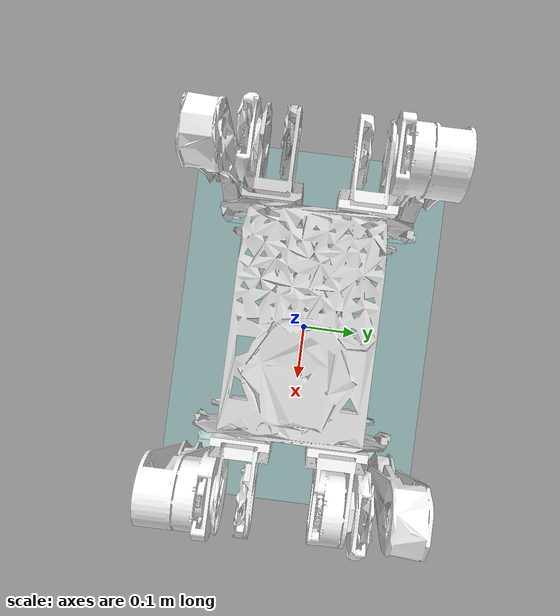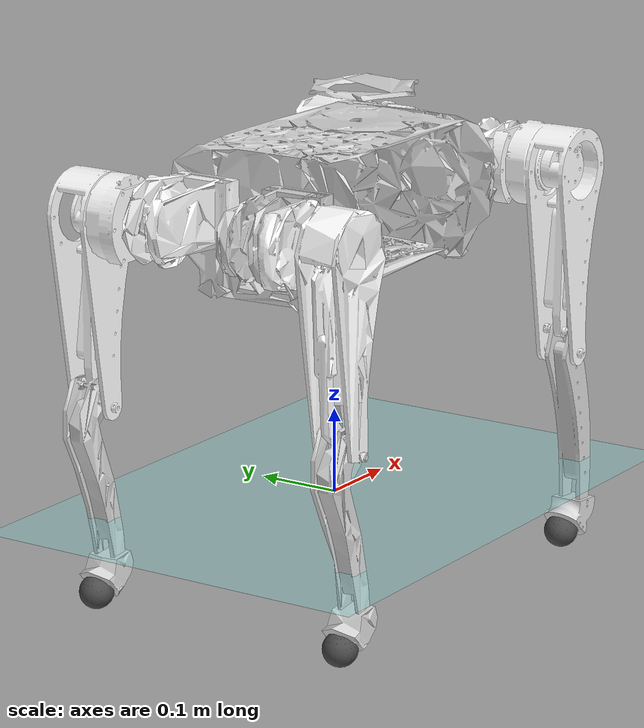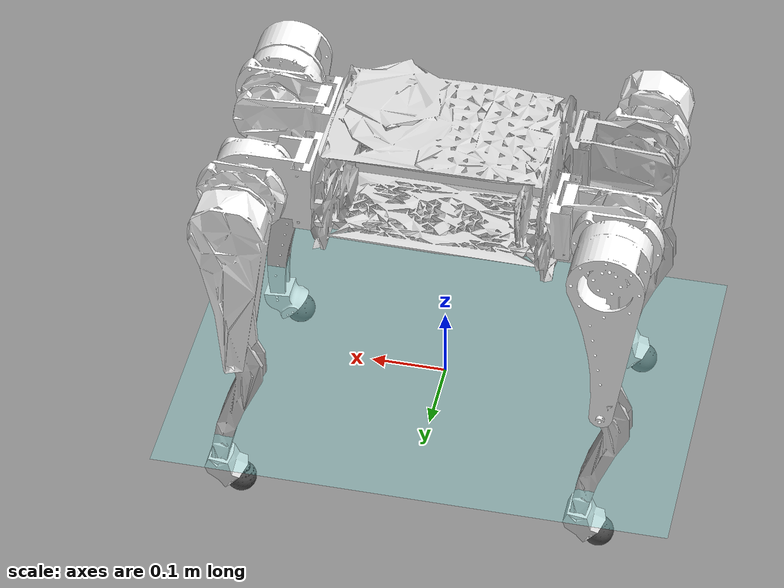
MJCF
<mujoco model="mybot_v2_1">
    <compiler angle="radian" meshdir="../meshes/" autolimits="true"/>
    <size njmax="500" nconmax="100" />
    <option gravity='0 0 -9.806' iterations='50' solver='Newton' timestep='0.005'/>

    <default>
        <default class="dog_v2">
            <geom contype="1" conaffinity="1" friction="0.6 0.3 0.3" rgba="0.5 0.6 0.7 1" margin="0.001" group="0"/>
            <joint armature="0.01" damping="2" frictionloss="0.2"/>
            <motor ctrlrange="-33.5 33.5" ctrllimited="true"/>

            <default class="abduction">
                <joint damping="1"/>
            </default>
            <default class="thigh">
                <joint damping="2"/>
            </default>
            <default class="calf">
                <joint damping="2" armature="0.0544"/>
                <motor gear="2.3333"/>
            </default>
        </default>

        <light castshadow="false" diffuse="1 1 1"/>
        <camera fovy="60"/>
    </default>

    <asset>
        <mesh name="body" file="body.STL" />
        <mesh name="FL_hip" file="FL_hip.STL" />
        <mesh name="FL_thigh" file="FL_thigh.STL" />
        <mesh name="FL_calf" file="FL_calf.STL" />
        <mesh name="FL_foot" file="FL_foot.STL" />
        <mesh name="FR_hip" file="FR_hip.STL" />
        <mesh name="FR_thigh" file="FR_thigh.STL" />
        <mesh name="FR_calf" file="FR_calf.STL" />
        <mesh name="FR_foot" file="FR_foot.STL" />
        <mesh name="RL_hip" file="RL_hip.STL" />
        <mesh name="RL_thigh" file="RL_thigh.STL" />
        <mesh name="RL_calf" file="RL_calf.STL" />
        <mesh name="RL_foot" file="RL_foot.STL" />
        <mesh name="RR_hip" file="RR_hip.STL" />
        <mesh name="RR_thigh" file="RR_thigh.STL" />
        <mesh name="RR_calf" file="RR_calf.STL" />
        <mesh name="RR_foot" file="RR_foot.STL" />

        <texture type="skybox" builtin="gradient" rgb1="1.0 1.0 1.0" rgb2="1.0 1.0 1.0" width="512" height="512"/>
        <texture name="plane" type="2d" builtin="flat" rgb1="1 1 1" rgb2="1 1 1" width="512" height="512" mark="cross" markrgb="0 0 0"/>
        <material name="plane" reflectance="0.0" texture="plane" texrepeat="3 3" texuniform="true"/>
    </asset>

    <visual>
        <rgba com="0.502 1.0 0 0.5" contactforce="0.98 0.4 0.4 0.7" contactpoint="1.0 1.0 0.6 0.4"/>
        <scale com="0.2" forcewidth="0.035" contactwidth="0.10" contactheight="0.04"/>
    </visual>

    <worldbody>
        <light directional="true" diffuse=".8 .8 .8" pos="0 0 10" dir="0 0 -10"/>
        <camera name="track" mode="trackcom" pos="0 -1.3 1.6" xyaxes="1 0 0 0 0.707 0.707"/>
        <geom name='floor' type='plane' conaffinity='1' condim='3' contype='1' rgba="0.5 0.9 0.9 0.1" material='plane' pos='0 0 0' size='0 0 1'/>

        <body name="body" pos="0 0 0.35" childclass="dog_v2">
            <inertial pos="0 0 0" mass="3.70357154" fullinertia="0.02485973 0.06519119 0.07602832 7E-08 2.029E-05 1.2E-06" />
            <joint type="free" />
            <geom type="mesh" contype="0" conaffinity="0" group="1" rgba="0.847 0.847 0.847 1" mesh="body" />
            <geom size="0.15 0.1 0.08" pos="-0.0 0 -0.0" type="box" rgba="0.913 0.913 0.847 0" />
            <site name="imu" pos="0 0 0"/>

            <body name="FL_hip" pos="0.15106 0.062037 0.0087919">
                <inertial pos="0.06912954 0.00308032 -0.00003864" mass="0.88715151" fullinertia="0.00069961 0.00185100 0.00156540 -0.00005524 0.00000161 -0.00000029" />
                <joint class="abduction" name="FL_hip_joint" pos="0 0 0" axis="1 0 0" range="-0.8 0.8" />
                <geom type="mesh" contype="0" conaffinity="0" group="1" rgba="1 1 1 1" mesh="FL_hip" />
                <geom size="0.04 0.03" euler="1.5707963 0 0" type="cylinder" rgba="0.913 0.913 0.847 0" />

                <body name="FL_thigh" pos="0.089 0.02895 0">
                    <inertial pos="-0.00176951 0.05306396 -0.03995815" mass="1.58133941" fullinertia="0.00867755 0.00831722 0.00215563 0.00006478 -0.00018618 0.00140967" />
                    <joint class="thigh" name="FL_thigh_joint" pos="0 0 0" axis="0 1 0" range="-1.04 4.18" />
                    <geom type="mesh" contype="0" conaffinity="0" group="1" rgba="1 1 1 1" mesh="FL_thigh" />
                    <geom size="0.02 0.02 0.1" pos="0 0.08 -0.1" type="box" rgba="0.913 0.913 0.847 0" />

                    <body name="FL_calf" pos="0 0.0753 -0.22">
                        <inertial pos="0.0023755 -0.000029153 -0.085563" mass="0.34494" fullinertia="0.00211121 0.00219234 0.00015881 0.0000003 0.00039966 -0.00000192" />
                        <joint class="calf" name="FL_calf_joint" pos="0 0 0" axis="0 1 0" range="-2.69 -0.91" />
                        <geom type="mesh" contype="0" conaffinity="0" group="1" rgba="0.847 0.847 0.847 1" mesh="FL_calf" />
                        <geom size="0.01 0.01 0.1" pos="0 0 -0.1" type="box" rgba="0 0 0 0" />

                        <body name="FL_foot" pos="0 -0.00025 -0.22336">
                            <inertial pos="0 0 0" mass="0.03351" fullinertia="0.0000053617 0.0000053617 0.0000053617 0 0 0" />
                            <geom type="mesh" contype="0" conaffinity="0" group="1" rgba="0.298 0.298 0.298 1" mesh="FL_foot" />
                            <geom size="0.02" type="sphere" rgba="0 0 0 1" />
                        </body>
                    </body>
                </body>
            </body>

            <body name="FR_hip" pos="0.15106 -0.061963 0.0087919">
                <inertial pos="0.06924677 -0.00308032 -0.00003847" mass="0.88715151" fullinertia="0.00069961 0.00185513 0.00156952 0.00005408 -0.00000026 0.00000029" />
                <joint class="abduction" name="FR_hip_joint" pos="0 0 0" axis="1 0 0" range="-0.8 0.8" />
                <geom type="mesh" contype="0" conaffinity="0" group="1" rgba="1 1 1 1" mesh="FR_hip" />
                <geom size="0.04 0.03" euler="1.5707963 0 0" type="cylinder" rgba="0.913 0.913 0.847 0" />

                <body name="FR_thigh" pos="0.089 -0.02895 0">
                    <inertial pos="-0.00184722 -0.05308638 -0.03995616" mass="1.5813" fullinertia="0.00867822 0.00831708 0.00215611 -0.00006202 -0.00018385 -0.00140961" />
                    <joint class="thigh" name="FR_thigh_joint" pos="0 0 0" axis="0 1 0" range="-1.04 4.18" />
                    <geom type="mesh" contype="0" conaffinity="0" group="1" rgba="1 1 1 1" mesh="FR_thigh" />
                    <geom size="0.02 0.02 0.1" pos="0 -0.08 -0.1" type="box" rgba="0.913 0.913 0.847 0" />

                    <body name="FR_calf" pos="0 -0.0753 -0.22">
                        <inertial pos="0.0023755 0.000026551 -0.085563" mass="0.34494" fullinertia="0.00211121 0.00219234 0.00015881 -0.00000028 0.00039966 0.00000182" />
                        <joint class="calf" name="FR_calf_joint" pos="0 0 0" axis="0 1 0" range="-2.69 -0.91" />
                        <geom type="mesh" contype="0" conaffinity="0" group="1" rgba="0.847 0.847 0.847 1" mesh="FR_calf" />
                        <geom size="0.01 0.01 0.1" pos="0 0 -0.1" type="box" rgba="0 0 0 0" />

                        <body name="FR_foot" pos="0 0.00025 -0.22336">
                            <inertial pos="0 0 0" mass="0.03351" fullinertia="0.0000053617 0.0000053617 0.0000053617 0 0 0" />
                            <geom type="mesh" contype="0" conaffinity="0" group="1" rgba="0.298 0.298 0.298 1" mesh="FR_foot" />
                            <geom size="0.02" type="sphere" rgba="0 0 0 1" />
                        </body>
                    </body>
                </body>
            </body>

            <body name="RL_hip" pos="-0.15014 0.062037 0.0087919">
                <inertial pos="-0.06912960 0.00308032 0.00003847" mass="0.88715151" fullinertia="0.00069961 0.00185101 0.00156541 0.00005524 0.00000161 0.00000029" />
                <joint class="abduction" name="RL_hip_joint" pos="0 0 0" axis="1 0 0" range="-0.8 0.8" />
                <geom type="mesh" contype="0" conaffinity="0" group="1" rgba="1 1 1 1" mesh="RL_hip" />
                <geom size="0.04 0.03" euler="1.5707963 0 0" type="cylinder" rgba="0.913 0.913 0.847 0" />

                <body name="RL_thigh" pos="-0.089 0.02895 0">
                    <inertial pos="-0.00271376 0.05342776 -0.03973152" mass="1.593154" fullinertia="0.00874288 0.00841103 0.00223462 0.00009667 -0.00020428 0.00139054" />
                    <joint class="thigh" name="RL_thigh_joint" pos="0 0 0" axis="0 1 0" range="-1.04 4.18" />
                    <geom type="mesh" contype="0" conaffinity="0" group="1" rgba="1 1 1 1" mesh="RL_thigh" />
                    <geom size="0.02 0.02 0.1" pos="0 0.08 -0.1" type="box" rgba="0.913 0.913 0.847 0" />

                    <body name="RL_calf" pos="0 0.0753 -0.22">
                        <inertial pos="0.0023755 -0.000047806 -0.085563" mass="0.34494" fullinertia="0.00211121 0.00219234 0.00015881 0.00000022 0.00039966 -0.00000123" />
                        <joint class="calf" name="RL_calf_joint" pos="0 0 0" axis="0 1 0" range="-2.69 -0.91" />
                        <geom type="mesh" contype="0" conaffinity="0" group="1" rgba="0.847 0.847 0.847 1" mesh="RL_calf" />
                        <geom size="0.01 0.01 0.1" pos="0 0 -0.1" type="box" rgba="0 0 0 0" />

                        <body name="RL_foot" pos="0 -0.00025 -0.22336">
                            <inertial pos="0 0 0" mass="0.03351" fullinertia="0.0000053617 0.0000053617 0.0000053617 0 0 0" />
                            <geom type="mesh" contype="0" conaffinity="0" group="1" rgba="0.298 0.298 0.298 1" mesh="RL_foot" />
                            <geom size="0.02" type="sphere" rgba="0 0 0 1" />
                        </body>
                    </body>
                </body>
            </body>

            <body name="RR_hip" pos="-0.15013508 -0.0619632146458127 0.00879191128020729">
                <inertial pos="-0.06924676 -0.00308032 0.00003847" mass="0.88715151" fullinertia="0.00069961 0.00185513 0.00156952 -0.00005408 -0.00000026 -0.00000029" />
                <joint class="abduction" name="RR_hip_joint" pos="0 0 0" axis="1 0 0" range="-0.8 0.8" />
                <geom type="mesh" contype="0" conaffinity="0" group="1" rgba="0.847 0.847 0.847 1" mesh="RR_hip" />
                <geom size="0.04 0.03" euler="1.5707963 0 0" type="cylinder" rgba="0.913 0.913 0.847 0" />

                <body name="RR_thigh" pos="-0.088999695625364 -0.0289499999999917 0">
                    <inertial pos="-0.00297935 -0.05327553 -0.03814011" mass="1.58306405" fullinertia="0.00816821 0.00785378 0.00221841 -0.00010062 -0.00025438 -0.00133132" />
                    <joint class="thigh" name="RR_thigh_joint" pos="0 0 0" axis="0 1 0" range="-1.04 4.18" />
                    <geom type="mesh" contype="0" conaffinity="0" group="1" rgba="1 1 1 1" mesh="RR_thigh" />
                    <geom size="0.02 0.02 0.1" pos="0 -0.08 -0.1" type="box" rgba="0.913 0.913 0.847 0" />

                    <body name="RR_calf" pos="0 -0.0753 -0.22">
                        <inertial pos="0.0031074 -0.000031371 -0.084827" mass="0.35539" fullinertia="0.00207591 0.00214155 0.00016557 -0.0000003 0.0003696 0.00000347" />
                        <joint class="calf" name="RR_calf_joint" pos="0 0 0" axis="0 1 0" range="-2.69 -0.91" />
                        <geom type="mesh" contype="0" conaffinity="0" group="1" rgba="0.847 0.847 0.847 1" mesh="RR_calf" />
                        <geom size="0.01 0.01 0.1" pos="0 0 -0.1" type="box" rgba="0 0 0 0" />

                        <body name="RR_foot" pos="0 0.00025 -0.22336">
                            <inertial pos="0 0 0" mass="0.03351" fullinertia="0.0000053617 0.0000053617 0.0000053617 0 0 0" />
                            <geom type="mesh" contype="0" conaffinity="0" group="1" rgba="0.298 0.298 0.298 1" mesh="RR_foot" />
                            <geom size="0.02" type="sphere" rgba="0 0 0 1" />
                        </body>
                    </body>
                </body>
            </body>
        </body>
    </worldbody>

    <actuator>
        <motor class="abduction" name="FL_hip"       gear="1" joint="FL_hip_joint"/>
        <motor class="thigh"     name="FL_thigh"     gear="1" joint="FL_thigh_joint"/>
        <motor class="calf"      name="FL_calf"    joint="FL_calf_joint"/>
        <motor class="abduction" name="FR_hip"       gear="1" joint="FR_hip_joint"/>
        <motor class="thigh"     name="FR_thigh"     gear="1" joint="FR_thigh_joint"/>
        <motor class="calf"      name="FR_calf"    joint="FR_calf_joint"/>
        <motor class="abduction" name="RL_hip"       gear="1" joint="RL_hip_joint"/>
        <motor class="thigh"     name="RL_thigh"     gear="1" joint="RL_thigh_joint"/>
        <motor class="calf"      name="RL_calf"    joint="RL_calf_joint"/>
        <motor class="abduction" name="RR_hip"       gear="1" joint="RR_hip_joint"/>
        <motor class="thigh"     name="RR_thigh"     gear="1" joint="RR_thigh_joint"/>
        <motor class="calf"      name="RR_calf"    joint="RR_calf_joint" />
    </actuator>

    <sensor>
        <jointpos name="FL_hip_pos"     joint="FL_hip_joint"/>
        <jointpos name="FL_thigh_pos"   joint="FL_thigh_joint"/>
        <jointpos name="FL_calf_pos"    joint="FL_calf_joint"/>
        <jointpos name="FR_hip_pos"     joint="FR_hip_joint"/>
        <jointpos name="FR_thigh_pos"   joint="FR_thigh_joint"/>
        <jointpos name="FR_calf_pos"    joint="FR_calf_joint"/>
        <jointpos name="RL_hip_pos"     joint="RL_hip_joint"/>
        <jointpos name="RL_thigh_pos"   joint="RL_thigh_joint"/>
        <jointpos name="RL_calf_pos"    joint="RL_calf_joint"/>
        <jointpos name="RR_hip_pos"     joint="RR_hip_joint"/>
        <jointpos name="RR_thigh_pos"   joint="RR_thigh_joint"/>
        <jointpos name="RR_calf_pos"    joint="RR_calf_joint" />

        <jointvel name="FL_hip_vel"     joint="FL_hip_joint"/>
        <jointvel name="FL_thigh_vel"   joint="FL_thigh_joint"/>
        <jointvel name="FL_calf_vel"    joint="FL_calf_joint"/>
        <jointvel name="FR_hip_vel"     joint="FR_hip_joint"/>
        <jointvel name="FR_thigh_vel"   joint="FR_thigh_joint"/>
        <jointvel name="FR_calf_vel"    joint="FR_calf_joint"/>
        <jointvel name="RL_hip_vel"     joint="RL_hip_joint"/>
        <jointvel name="RL_thigh_vel"   joint="RL_thigh_joint"/>
        <jointvel name="RL_calf_vel"    joint="RL_calf_joint"/>
        <jointvel name="RR_hip_vel"     joint="RR_hip_joint"/>
        <jointvel name="RR_thigh_vel"   joint="RR_thigh_joint"/>
        <jointvel name="RR_calf_vel"    joint="RR_calf_joint" />

        <accelerometer name="Body_Acc" site="imu"/>
        <gyro name="Body_Gyro" site="imu"/>
        <framepos name="Body_Pos" objtype="site" objname="imu"/>
        <framequat name="Body_Quat" objtype="site" objname="imu"/>
    </sensor>
</mujoco>
